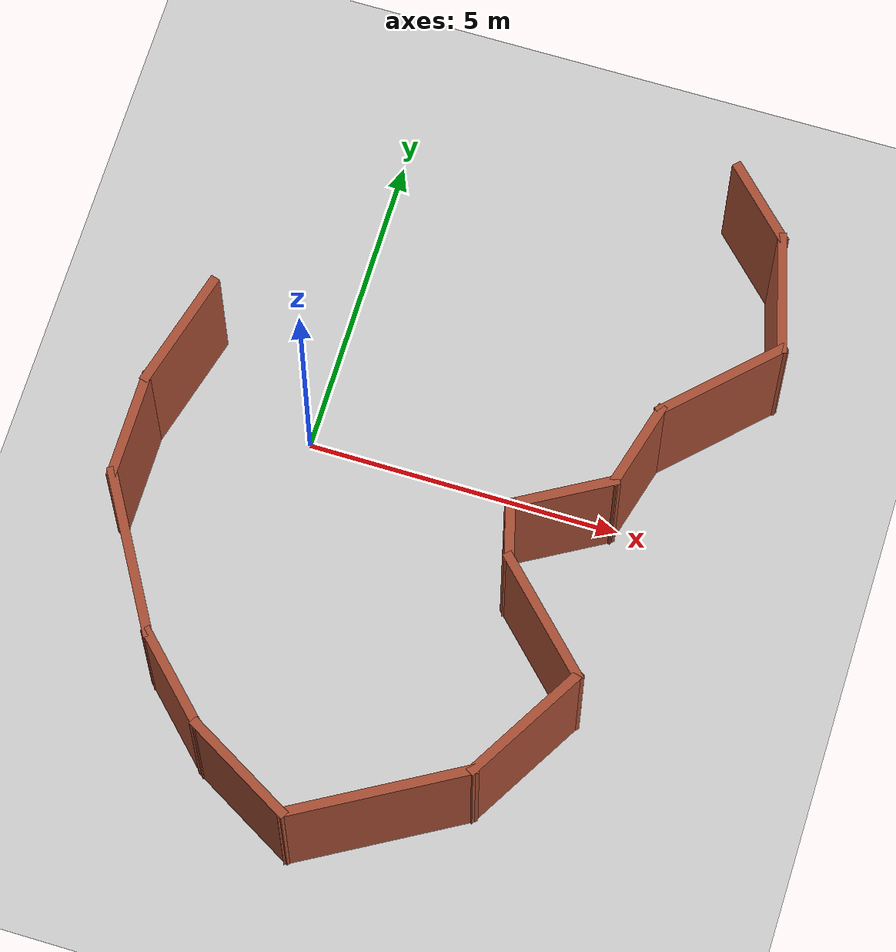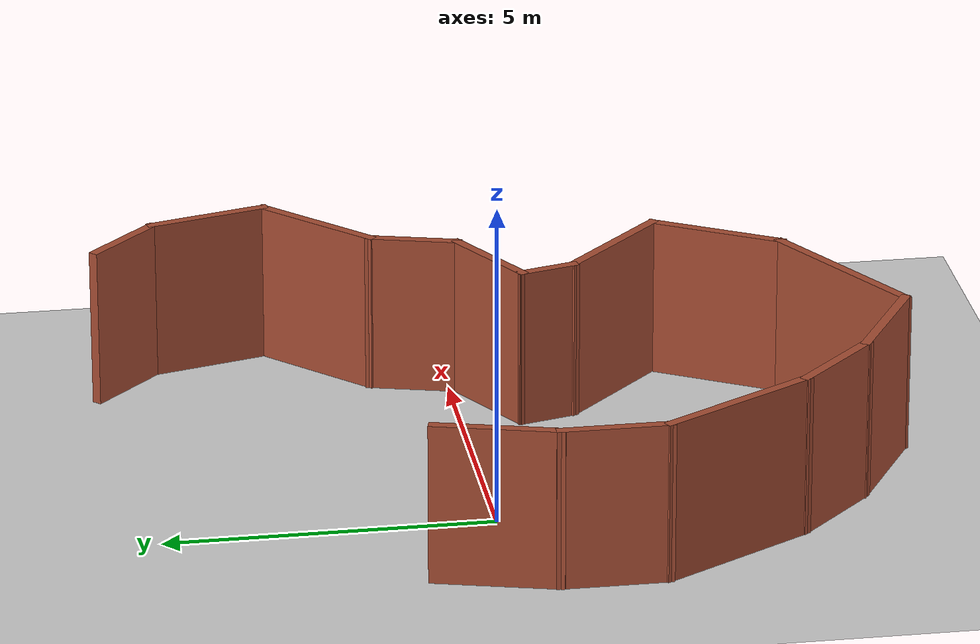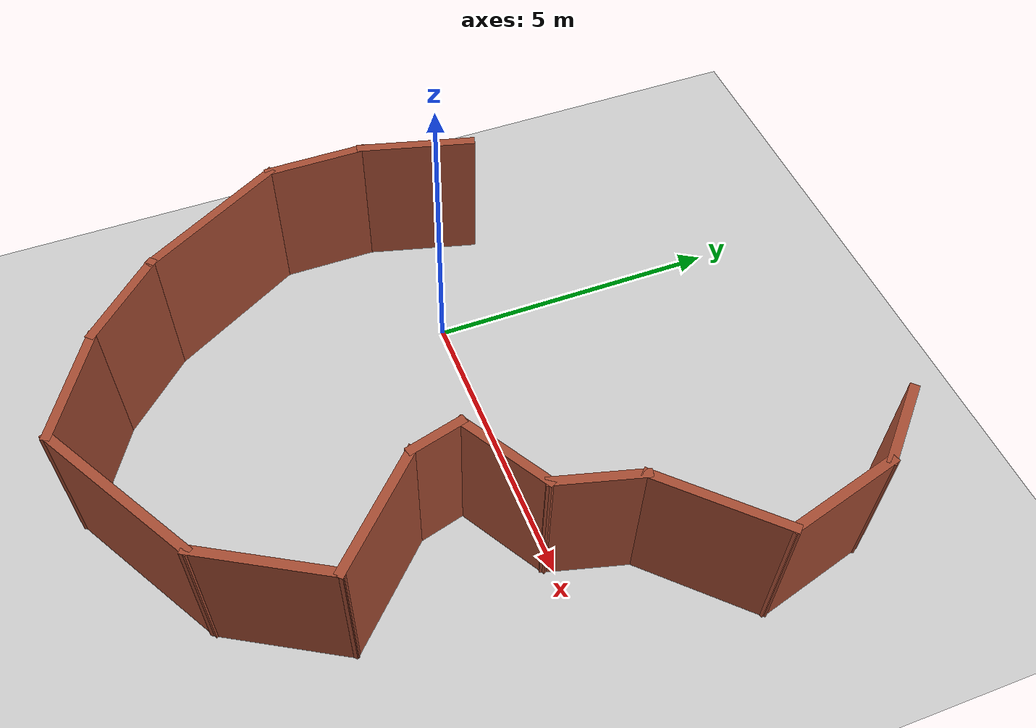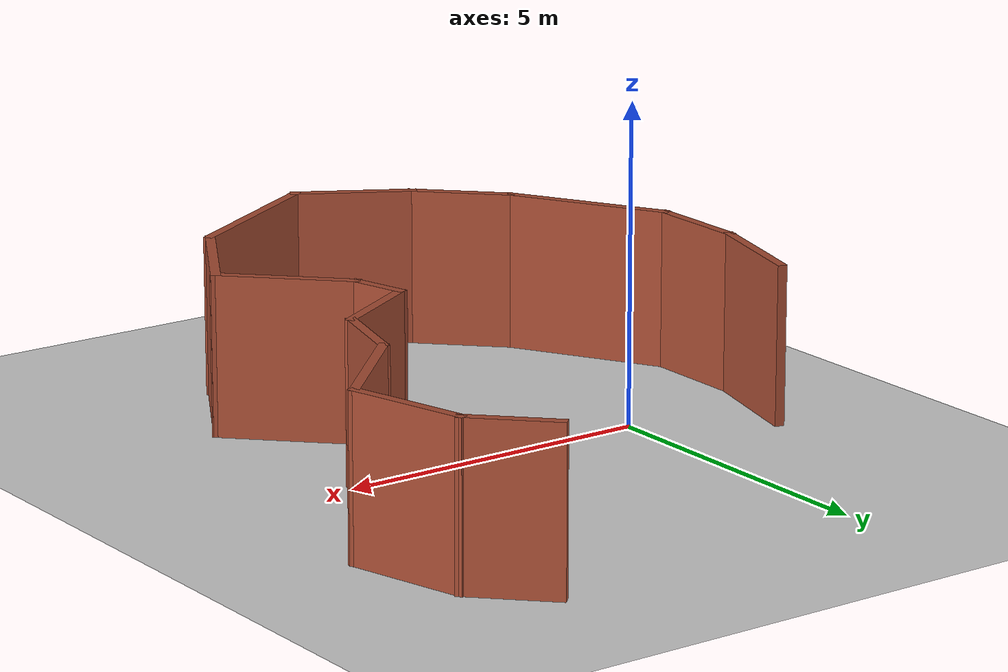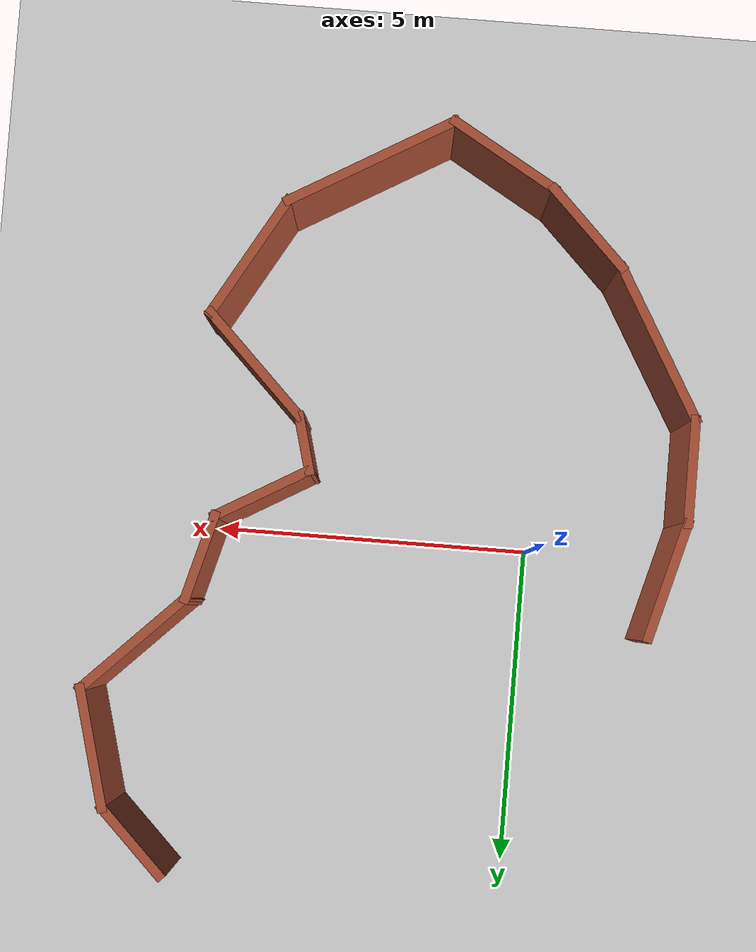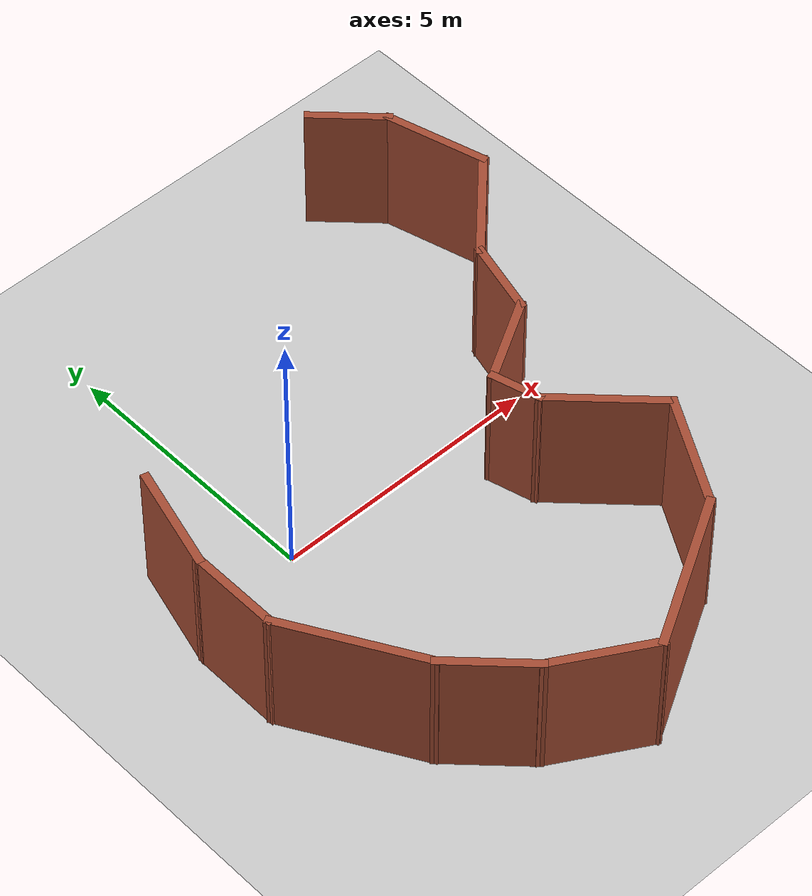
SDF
<sdf version="1.7">
 <world name="default">
  <light name="sun" type="directional">
   <pose>0 0 10 0 -0 0</pose>
   <diffuse>0.8 0.8 0.8 1</diffuse>
   <specular>0.2 0.2 0.2 1</specular>
   <attenuation>
    <range>1000</range>
    <constant>0.9</constant>
    <linear>0.01</linear>
    <quadratic>0.001</quadratic>
   </attenuation>
   <direction>-0.5 0.1 -0.9</direction>
   <spot><inner_angle>0</inner_angle><outer_angle>0</outer_angle><falloff>0</falloff></spot>
  </light>
  <model name="ground_plane">
   <static>1</static>
   <link name="link">
    <collision name="collision">
     <geometry><plane><normal>0 0 1</normal><size>100 100</size></plane></geometry>
     <surface>
      <contact><collide_bitmask>65535</collide_bitmask></contact>
      <friction><ode><mu>100</mu><mu2>50</mu2></ode></friction>
     </surface>
    </collision>
    <visual name="visual">
     <cast_shadows>0</cast_shadows>
     <geometry><plane><normal>0 0 1</normal><size>100 100</size></plane></geometry>
     <material>
      <script><uri>file://media/materials/scripts/gazebo.material</uri><name>Gazebo/Grey</name></script>
     </material>
    </visual>
   </link>
  </model>
  <gravity>0 0 -9.8</gravity>
  <magnetic_field>6e-06 2.3e-05 -4.2e-05</magnetic_field>
  <atmosphere type="adiabatic"/>
  <physics type="ode">
   <max_step_size>0.001</max_step_size>
   <real_time_factor>1</real_time_factor>
   <real_time_update_rate>1000</real_time_update_rate>
  </physics>
  <scene><ambient>0.4 0.4 0.4 1</ambient><background>0.7 0.7 0.7 1</background><shadows>1</shadows></scene>
  <audio><device>default</device></audio>
  <spherical_coordinates>
   <surface_model>EARTH_WGS84</surface_model>
   <latitude_deg>0</latitude_deg>
   <longitude_deg>0</longitude_deg>
   <elevation>0</elevation>
   <heading_deg>0</heading_deg>
  </spherical_coordinates>
  <light name="user_point_light_0" type="point">
   <pose>0.148768 0.112967 1 0 -0 0</pose>
   <diffuse>0.5 0.5 0.5 1</diffuse>
   <specular>0.1 0.1 0.1 1</specular>
   <attenuation>
    <range>20</range>
    <constant>0.5</constant>
    <linear>0.01</linear>
    <quadratic>0.001</quadratic>
   </attenuation>
   <cast_shadows>0</cast_shadows>
   <direction>0 0 -1</direction>
   <spot><inner_angle>0</inner_angle><outer_angle>0</outer_angle><falloff>0</falloff></spot>
  </light>
  <model name="piper_building_1">
   <pose>2.19518 -0.536182 0 0 -0 0</pose>
   <link name="Wall_1">
    <collision name="Wall_1_Collision">
     <geometry><box><size>1.75 0.15 2.5</size></box></geometry>
     <pose>0 0 1.25 0 -0 0</pose>
    </collision>
    <visual name="Wall_1_Visual">
     <pose>0 0 1.25 0 -0 0</pose>
     <geometry><box><size>1.75 0.15 2.5</size></box></geometry>
     <material>
      <script><uri>file://media/materials/scripts/gazebo.material</uri><name>Gazebo/Bricks</name></script>
      <ambient>1 1 1 1</ambient>
     </material>
     <meta><layer>0</layer></meta>
    </visual>
    <pose>-4.53518 -0.833818 0 0 -0 -1.5708</pose>
   </link>
   <link name="Wall_10">
    <collision name="Wall_10_Collision">
     <geometry><box><size>2.25 0.15 2.5</size></box></geometry>
     <pose>0 0 1.25 0 -0 0</pose>
    </collision>
    <visual name="Wall_10_Visual">
     <pose>0 0 1.25 0 -0 0</pose>
     <geometry><box><size>2.25 0.15 2.5</size></box></geometry>
     <material>
      <script><uri>file://media/materials/scripts/gazebo.material</uri><name>Gazebo/Bricks</name></script>
      <ambient>1 1 1 1</ambient>
     </material>
     <meta><layer>0</layer></meta>
    </visual>
    <pose>2.49151 -3.60753 0 0 -0 1.0472</pose>
   </link>
   <link name="Wall_11">
    <collision name="Wall_11_Collision">
     <geometry><box><size>2.25 0.15 2.5</size></box></geometry>
     <pose>0 0 1.25 0 -0 0</pose>
    </collision>
    <visual name="Wall_11_Visual">
     <pose>0 0 1.25 0 -0 0</pose>
     <geometry><box><size>2.25 0.15 2.5</size></box></geometry>
     <material>
      <script><uri>file://media/materials/scripts/gazebo.material</uri><name>Gazebo/Bricks</name></script>
      <ambient>1 1 1 1</ambient>
     </material>
     <meta><layer>0</layer></meta>
    </visual>
    <pose>2.27405 -1.95574 0 0 -0 2.35619</pose>
   </link>
   <link name="Wall_13">
    <collision name="Wall_13_Collision">
     <geometry><box><size>1 0.15 2.5</size></box></geometry>
     <pose>0 0 1.25 0 -0 0</pose>
    </collision>
    <visual name="Wall_13_Visual">
     <pose>0 0 1.25 0 -0 0</pose>
     <geometry><box><size>1 0.15 2.5</size></box></geometry>
     <material>
      <script><uri>file://media/materials/scripts/gazebo.material</uri><name>Gazebo/Bricks</name></script>
      <ambient>1 1 1 1</ambient>
     </material>
     <meta><layer>0</layer></meta>
    </visual>
    <pose>1.42159 -0.802759 0 0 -0 1.8326</pose>
   </link>
   <link name="Wall_15">
    <collision name="Wall_15_Collision">
     <geometry><box><size>1.75 0.15 2.5</size></box></geometry>
     <pose>0 0 1.25 0 -0 0</pose>
    </collision>
    <visual name="Wall_15_Visual">
     <pose>0 0 1.25 0 -0 0</pose>
     <geometry><box><size>1.75 0.15 2.5</size></box></geometry>
     <material>
      <script><uri>file://media/materials/scripts/gazebo.material</uri><name>Gazebo/Bricks</name></script>
      <ambient>1 1 1 1</ambient>
     </material>
     <meta><layer>0</layer></meta>
    </visual>
    <pose>2.00441 0.00776 0 0 -0 0.523599</pose>
   </link>
   <link name="Wall_16">
    <collision name="Wall_16_Collision">
     <geometry><box><size>1.5 0.15 2.5</size></box></geometry>
     <pose>0 0 1.25 0 -0 0</pose>
    </collision>
    <visual name="Wall_16_Visual">
     <pose>0 0 1.25 0 -0 0</pose>
     <geometry><box><size>1.5 0.15 2.5</size></box></geometry>
     <material>
      <script><uri>file://media/materials/scripts/gazebo.material</uri><name>Gazebo/Bricks</name></script>
      <ambient>1 1 1 1</ambient>
     </material>
     <meta><layer>0</layer></meta>
    </visual>
    <pose>2.87194 1.05976 0 0 -0 1.309</pose>
   </link>
   <link name="Wall_17">
    <collision name="Wall_17_Collision">
     <geometry><box><size>2.25 0.15 2.5</size></box></geometry>
     <pose>0 0 1.25 0 -0 0</pose>
    </collision>
    <visual name="Wall_17_Visual">
     <pose>0 0 1.25 0 -0 0</pose>
     <geometry><box><size>2.25 0.15 2.5</size></box></geometry>
     <material>
      <script><uri>file://media/materials/scripts/gazebo.material</uri><name>Gazebo/Bricks</name></script>
      <ambient>1 1 1 1</ambient>
     </material>
     <meta><layer>0</layer></meta>
    </visual>
    <pose>3.7891 2.45422 0 0 -0 0.785398</pose>
   </link>
   <link name="Wall_19">
    <collision name="Wall_19_Collision">
     <geometry><box><size>2 0.15 2.5</size></box></geometry>
     <pose>0 0 1.25 0 -0 0</pose>
    </collision>
    <visual name="Wall_19_Visual">
     <pose>0 0 1.25 0 -0 0</pose>
     <geometry><box><size>2 0.15 2.5</size></box></geometry>
     <material>
      <script><uri>file://media/materials/scripts/gazebo.material</uri><name>Gazebo/Bricks</name></script>
      <ambient>1 1 1 1</ambient>
     </material>
     <meta><layer>0</layer></meta>
    </visual>
    <pose>4.29216 4.09016 0 0 -0 1.8326</pose>
   </link>
   <link name="Wall_20">
    <collision name="Wall_20_Collision">
     <geometry><box><size>1.5 0.15 2.5</size></box></geometry>
     <pose>0 0 1.25 0 -0 0</pose>
    </collision>
    <visual name="Wall_20_Visual">
     <pose>0 0 1.25 0 -0 0</pose>
     <geometry><box><size>1.5 0.15 2.5</size></box></geometry>
     <material>
      <script><uri>file://media/materials/scripts/gazebo.material</uri><name>Gazebo/Bricks</name></script>
      <ambient>1 1 1 1</ambient>
     </material>
     <meta><layer>0</layer></meta>
    </visual>
    <pose>3.57545 5.46094 0 0 -0 2.35619</pose>
   </link>
   <link name="Wall_3">
    <collision name="Wall_3_Collision">
     <geometry><box><size>2 0.15 2.5</size></box></geometry>
     <pose>0 0 1.25 0 -0 0</pose>
    </collision>
    <visual name="Wall_3_Visual">
     <pose>0 0 1.25 0 -0 0</pose>
     <geometry><box><size>2 0.15 2.5</size></box></geometry>
     <material>
      <script><uri>file://media/materials/scripts/gazebo.material</uri><name>Gazebo/Bricks</name></script>
      <ambient>1 1 1 1</ambient>
     </material>
     <meta><layer>0</layer></meta>
    </visual>
    <pose>-4.29577 0.859663 0 0 -0 1.309</pose>
   </link>
   <link name="Wall_5">
    <collision name="Wall_5_Collision">
     <geometry><box><size>2.75 0.15 2.5</size></box></geometry>
     <pose>0 0 1.25 0 -0 0</pose>
    </collision>
    <visual name="Wall_5_Visual">
     <pose>0 0 1.25 0 -0 0</pose>
     <geometry><box><size>2.75 0.15 2.5</size></box></geometry>
     <material>
      <script><uri>file://media/materials/scripts/gazebo.material</uri><name>Gazebo/Bricks</name></script>
      <ambient>1 1 1 1</ambient>
     </material>
     <meta><layer>0</layer></meta>
    </visual>
    <pose>-3.88518 -2.75965 0 0 -0 -1.0472</pose>
   </link>
   <link name="Wall_6">
    <collision name="Wall_6_Collision">
     <geometry><box><size>1.75 0.15 2.5</size></box></geometry>
     <pose>0 0 1.25 0 -0 0</pose>
    </collision>
    <visual name="Wall_6_Visual">
     <pose>0 0 1.25 0 -0 0</pose>
     <geometry><box><size>1.75 0.15 2.5</size></box></geometry>
     <material>
      <script><uri>file://media/materials/scripts/gazebo.material</uri><name>Gazebo/Bricks</name></script>
      <ambient>1 1 1 1</ambient>
     </material>
     <meta><layer>0</layer></meta>
    </visual>
    <pose>-2.66949 -4.45117 0 0 -0 -0.785398</pose>
   </link>
   <link name="Wall_8">
    <collision name="Wall_8_Collision">
     <geometry><box><size>2 0.15 2.5</size></box></geometry>
     <pose>0 0 1.25 0 -0 0</pose>
    </collision>
    <visual name="Wall_8_Visual">
     <pose>0 0 1.25 0 -0 0</pose>
     <geometry><box><size>2 0.15 2.5</size></box></geometry>
     <material>
      <script><uri>file://media/materials/scripts/gazebo.material</uri><name>Gazebo/Bricks</name></script>
      <ambient>1 1 1 1</ambient>
     </material>
     <meta><layer>0</layer></meta>
    </visual>
    <pose>-1.30273 -5.47935 0 0 -0 -0.523599</pose>
   </link>
   <link name="Wall_9">
    <collision name="Wall_9_Collision">
     <geometry><box><size>3 0.15 2.5</size></box></geometry>
     <pose>0 0 1.25 0 -0 0</pose>
    </collision>
    <visual name="Wall_9_Visual">
     <pose>0 0 1.25 0 -0 0</pose>
     <geometry><box><size>3 0.15 2.5</size></box></geometry>
     <material>
      <script><uri>file://media/materials/scripts/gazebo.material</uri><name>Gazebo/Bricks</name></script>
      <ambient>1 1 1 1</ambient>
     </material>
     <meta><layer>0</layer></meta>
    </visual>
    <pose>0.732427 -5.22935 0 0 -0 0.523599</pose>
   </link>
   <static>1</static>
  </model>
 </world>
</sdf>
